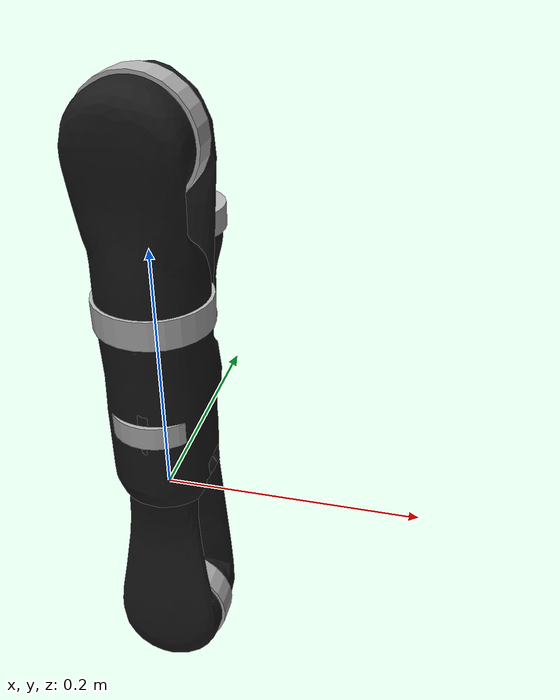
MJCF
<mujoco model="jaco_arm">
  <compiler angle="radian" meshdir="meshes_decimated/"/>
  <include file="common.xml"/>

  <asset>
    <mesh name="base" file="base.stl"/>
    <mesh name="shoulder" file="shoulder.stl"/>
    <mesh name="arm" file="arm.stl"/>
    <mesh name="forearm" file="forearm.stl"/>
    <mesh name="wrist" file="wrist.stl"/>
  </asset>

  <default>
    <geom type="mesh" material="dark_gray" condim="3" contype="3" conaffinity="2"/>
    <joint type="hinge" damping="0.01"/>
    <default class="large_joint">
      <joint armature="4" frictionloss="2"/>
    </default>
    <default class="small_joint">
      <joint armature="2" frictionloss="1"/>
    </default>
    <default class="ring">
      <geom type="cylinder" material="light_gray" mass="0"/>
      <default class="large_ring">
        <geom size="0.044 0.011"/>
      </default>
      <default class="small_ring">
        <geom size="0.035 0.009"/>
      </default>
    </default>
  </default>

  <worldbody>
    <body name="b_base">
      <geom name="base" mesh="base" mass="0.718306"/>
      <body name="b_1" pos="0 0 0.15675" quat="0 0 1 0">
        <joint name="joint_1" class="large_joint"/>
        <geom name="link_1" mesh="shoulder" mass="0.643205"/>
        <geom name="ring_1" class="large_ring"/>
        <body name="b_2" pos="0 0.0016 -0.11875" quat="0 0 -0.707107 0.707107">
          <joint name="joint_2"  class="large_joint" limited="true" range="0.820305 5.462881" />
          <geom name="link_2" mesh="arm" mass="1.16915"/>
          <geom name="ring_2" class="large_ring"/>
          <body name="b_3" pos="0 -0.41 0" quat="0 0 1 0">
            <joint name="joint_3"  class="large_joint" limited="true" range="0.331613 5.951573"/>
            <geom name="link_3" mesh="forearm" mass="0.673443"/>
            <geom name="ring_3" class="large_ring"/>
            <body name="b_4" pos="0 0.2073 -0.0114" quat="0 0 -0.707107 0.707107">
              <joint name="joint_4" class="small_joint"/>
              <geom name="link_4" mesh="wrist" mass="0.221432"/>
              <geom name="ring_4" class="small_ring"/>
              <body name="b_5" pos="0 -0.03703 -0.06414" quat="0 0 0.5 0.866025">
                <joint name="joint_5" class="small_joint"/>
                <geom name="link_5" mesh="wrist" mass="0.221432"/>
                <geom name="ring_5" class="small_ring"/>
                <body name="b_6" pos="0 -0.03703 -0.06414" quat="0 0 0.5 0.866025">
                  <joint name="joint_6" class="small_joint"/>
                  <!-- This geom has a tiny mass because MuJoCo doesn't allow massless bodies with
                       DOFs. Normally the gripper would be attached as a child of this body. -->
                  <geom name="ring_6" class="small_ring" mass="1e-9"/>
                  <site name="wristsite" quat="0. 0.70710678118 0.70710678118 0."/>
                </body>
              </body>
            </body>
          </body>
        </body>
      </body>
    </body>
  </worldbody>

  <!-- Prevent contact between the base and the first body when the base is a direct child of the worldbody. -->
  <contact>
    <exclude body1='b_base' body2='b_1'/>
  </contact>

</mujoco>

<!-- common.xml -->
<mujoco>
  <asset>
    <material name="dark_gray" rgba="0.1 0.1 0.1 1"/>
    <material name="light_gray" rgba="0.7 0.7 0.7 1"/>
    <material name="reference_site" rgba="1 0 0 0.5"/>
  </asset>
  <default>
    <!-- These values yield contacts that are significantly harder than with MuJoCo's defaults. -->
    <geom solimp="0.99 0.999 0.001" solref="0.01 1"/>
    <site type="sphere" size="0.01" material="reference_site" group="4"/>
  </default>
</mujoco>
